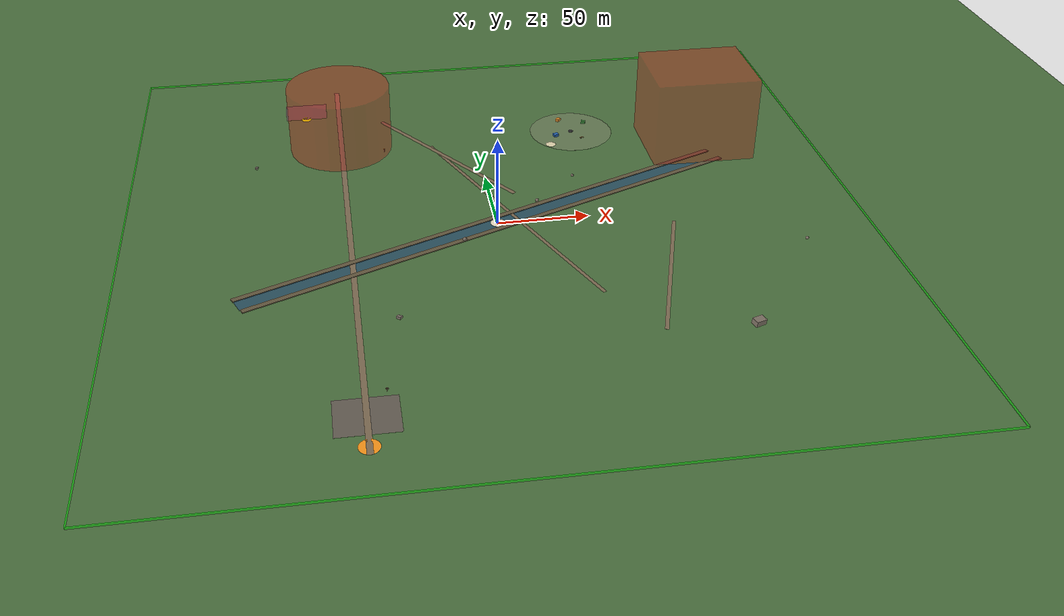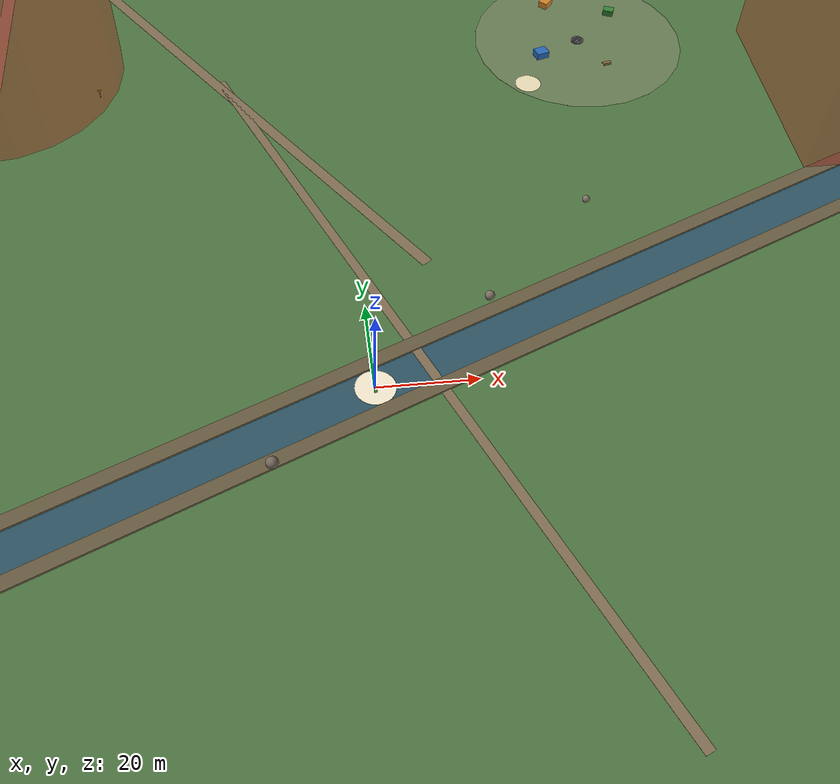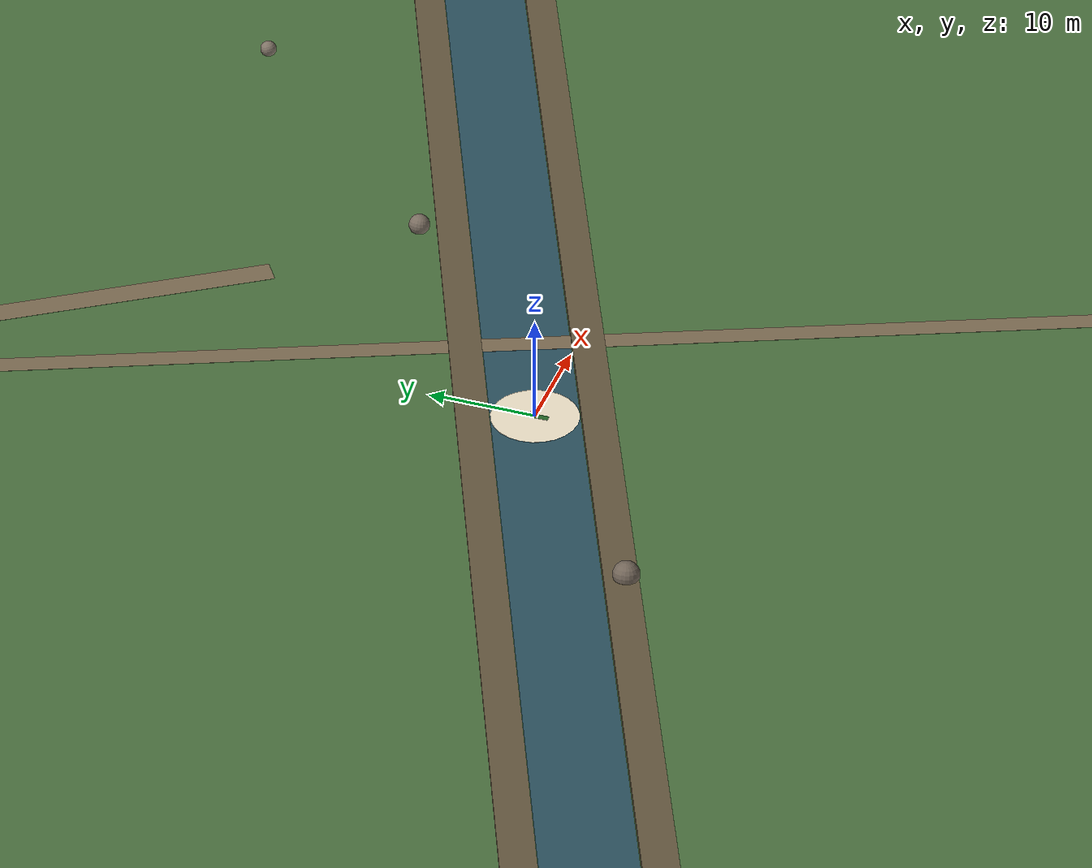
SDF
<sdf version="1.9">
 <world name="flyby_forest_isr">
  <physics name="training_physics" type="ode">
   <max_step_size>0.001</max_step_size>
   <real_time_factor>1.0</real_time_factor>
   <real_time_update_rate>1000</real_time_update_rate>
   <ode>
    <solver><type>quick</type><iters>50</iters><sor>1.3</sor></solver>
    <constraints><cfm>0.0</cfm><erp>0.2</erp></constraints>
   </ode>
  </physics>
  <plugin filename="gz-sim-physics-system" name="gz::sim::systems::Physics"/>
  <plugin filename="gz-sim-sensors-system" name="gz::sim::systems::Sensors">
   <render_engine>ogre2</render_engine>
  </plugin>
  <plugin filename="gz-sim-scene-broadcaster-system" name="gz::sim::systems::SceneBroadcaster"/>
  <plugin filename="gz-sim-user-commands-system" name="gz::sim::systems::UserCommands"/>
  <plugin filename="gz-sim-imu-system" name="gz::sim::systems::Imu"/>
  <plugin filename="gz-sim-air-pressure-system" name="gz::sim::systems::AirPressure"/>
  <plugin filename="gz-sim-magnetometer-system" name="gz::sim::systems::Magnetometer"/>
  <plugin filename="gz-sim-navsat-system" name="gz::sim::systems::NavSat"/>
  <atmosphere type="adiabatic"><temperature>293.15</temperature><pressure>101325</pressure></atmosphere>
  <spherical_coordinates>
   <surface_model>EARTH_WGS84</surface_model>
   <world_frame_orientation>ENU</world_frame_orientation>
   <latitude_deg>38.9072</latitude_deg>
   <longitude_deg>-121.0583</longitude_deg>
   <elevation>450</elevation>
   <heading_deg>0</heading_deg>
  </spherical_coordinates>
  <light type="directional" name="sun">
   <pose>0 0 150 0 0 0</pose>
   <diffuse>0.85 0.85 0.75 1</diffuse>
   <specular>0.3 0.3 0.25 1</specular>
   <attenuation>
    <range>1000</range>
    <constant>0.9</constant>
    <linear>0.01</linear>
    <quadratic>0.001</quadratic>
   </attenuation>
   <direction>-0.3 0.2 -0.9</direction>
  </light>
  <light type="directional" name="ambient_fill">
   <cast_shadows>false</cast_shadows>
   <pose>0 0 150 0 0 0</pose>
   <diffuse>0.2 0.22 0.18 1</diffuse>
   <specular>0 0 0 1</specular>
   <direction>0 0 -1</direction>
  </light>
  <scene>
   <ambient>0.35 0.38 0.32 1</ambient>
   <background>0.6 0.7 0.85 1</background>
   <shadows>true</shadows>
  </scene>
  <model name="ground_plane">
   <static>true</static>
   <link name="link">
    <collision name="collision">
     <geometry><plane><normal>0 0 1</normal><size>500 500</size></plane></geometry>
     <surface><friction><ode><mu>80</mu><mu2>40</mu2></ode></friction></surface>
    </collision>
    <visual name="visual">
     <geometry><plane><normal>0 0 1</normal><size>500 500</size></plane></geometry>
     <material><ambient>0.25 0.4 0.2 1</ambient><diffuse>0.3 0.45 0.25 1</diffuse></material>
    </visual>
   </link>
  </model>
  <model name="creek_water">
   <static>true</static>
   <pose>0 0 -0.15 0 0 0.4</pose>
   <link name="link">
    <visual name="visual">
     <geometry><box><size>300 8 0.3</size></box></geometry>
     <material>
      <ambient>0.15 0.3 0.4 0.85</ambient>
      <diffuse>0.2 0.35 0.45 0.85</diffuse>
      <specular>0.4 0.4 0.4 1</specular>
     </material>
    </visual>
   </link>
  </model>
  <model name="creek_bank_north">
   <static>true</static>
   <pose>-2.5 5 0.1 0 0 0.4</pose>
   <link name="link">
    <collision name="collision"><geometry><box><size>300 3 0.5</size></box></geometry></collision>
    <visual name="visual">
     <geometry><box><size>300 3 0.5</size></box></geometry>
     <material><ambient>0.35 0.3 0.2 1</ambient><diffuse>0.4 0.35 0.25 1</diffuse></material>
    </visual>
   </link>
  </model>
  <model name="creek_bank_south">
   <static>true</static>
   <pose>2.5 -5 0.1 0 0 0.4</pose>
   <link name="link">
    <collision name="collision"><geometry><box><size>300 3 0.5</size></box></geometry></collision>
    <visual name="visual">
     <geometry><box><size>300 3 0.5</size></box></geometry>
     <material><ambient>0.35 0.3 0.2 1</ambient><diffuse>0.4 0.35 0.25 1</diffuse></material>
    </visual>
   </link>
  </model>
  <model name="trail_main_ns">
   <static>true</static>
   <pose>-80 0 0.01 0 0 0</pose>
   <link name="link">
    <visual name="visual">
     <geometry><box><size>3 350 0.02</size></box></geometry>
     <material><ambient>0.45 0.38 0.28 1</ambient><diffuse>0.5 0.43 0.33 1</diffuse></material>
    </visual>
   </link>
  </model>
  <model name="trail_to_campsite">
   <static>true</static>
   <pose>-20 80 0.01 0 0 0.6</pose>
   <link name="link">
    <visual name="visual">
     <geometry><box><size>2.5 120 0.02</size></box></geometry>
     <material><ambient>0.45 0.38 0.28 1</ambient><diffuse>0.5 0.43 0.33 1</diffuse></material>
    </visual>
   </link>
  </model>
  <model name="trail_creek">
   <static>true</static>
   <pose>8 10 0.01 0 0 0.4</pose>
   <link name="link">
    <visual name="visual">
     <geometry><box><size>2 180 0.02</size></box></geometry>
     <material><ambient>0.45 0.38 0.28 1</ambient><diffuse>0.5 0.43 0.33 1</diffuse></material>
    </visual>
   </link>
  </model>
  <model name="trail_overlook">
   <static>true</static>
   <pose>80 -60 0.01 0 0 -0.3</pose>
   <link name="link">
    <visual name="visual">
     <geometry><box><size>2 100 0.02</size></box></geometry>
     <material><ambient>0.45 0.38 0.28 1</ambient><diffuse>0.5 0.43 0.33 1</diffuse></material>
    </visual>
   </link>
  </model>
  <model name="geofence_north">
   <static>true</static>
   <pose>0 200 0.5 0 0 0</pose>
   <link name="link">
    <visual name="visual">
     <geometry><box><size>400 0.5 1</size></box></geometry>
     <material><ambient>0 1 0 0.5</ambient><diffuse>0 1 0 0.5</diffuse></material>
    </visual>
   </link>
  </model>
  <model name="geofence_south">
   <static>true</static>
   <pose>0 -200 0.5 0 0 0</pose>
   <link name="link">
    <visual name="visual">
     <geometry><box><size>400 0.5 1</size></box></geometry>
     <material><ambient>0 1 0 0.5</ambient><diffuse>0 1 0 0.5</diffuse></material>
    </visual>
   </link>
  </model>
  <model name="geofence_east">
   <static>true</static>
   <pose>200 0 0.5 0 0 0</pose>
   <link name="link">
    <visual name="visual">
     <geometry><box><size>0.5 400 1</size></box></geometry>
     <material><ambient>0 1 0 0.5</ambient><diffuse>0 1 0 0.5</diffuse></material>
    </visual>
   </link>
  </model>
  <model name="geofence_west">
   <static>true</static>
   <pose>-200 0 0.5 0 0 0</pose>
   <link name="link">
    <visual name="visual">
     <geometry><box><size>0.5 400 1</size></box></geometry>
     <material><ambient>0 1 0 0.5</ambient><diffuse>0 1 0 0.5</diffuse></material>
    </visual>
   </link>
  </model>
  <model name="ranger_station_collision">
   <static>true</static>
   <pose>-120 150 4 0 0 0.1</pose>
   <link name="link">
    <collision name="collision"><geometry><box><size>15 12 8</size></box></geometry></collision>
   </link>
  </model>
  <model name="ranger_parking">
   <static>true</static>
   <pose>-100 150 0.01 0 0 0</pose>
   <link name="link">
    <visual name="visual">
     <geometry><box><size>25 20 0.02</size></box></geometry>
     <material><ambient>0.35 0.32 0.28 1</ambient><diffuse>0.4 0.37 0.33 1</diffuse></material>
    </visual>
   </link>
  </model>
  <model name="trailhead_parking">
   <static>true</static>
   <pose>-80 -150 0.01 0 0 0</pose>
   <link name="link">
    <visual name="visual">
     <geometry><box><size>30 25 0.02</size></box></geometry>
     <material><ambient>0.35 0.32 0.28 1</ambient><diffuse>0.4 0.37 0.33 1</diffuse></material>
    </visual>
   </link>
  </model>
  <model name="trailhead_sign">
   <static>true</static>
   <pose>-70 -135 0 0 0 0</pose>
   <link name="link">
    <visual name="post">
     <pose>0 0 1 0 0 0</pose>
     <geometry><cylinder><radius>0.08</radius><length>2</length></cylinder></geometry>
     <material><ambient>0.4 0.3 0.2 1</ambient><diffuse>0.5 0.4 0.3 1</diffuse></material>
    </visual>
    <visual name="board">
     <pose>0 0 2 0 0 0</pose>
     <geometry><box><size>1.2 0.1 0.8</size></box></geometry>
     <material><ambient>0.3 0.25 0.15 1</ambient><diffuse>0.4 0.35 0.25 1</diffuse></material>
    </visual>
   </link>
  </model>
  <model name="campsite_clearing">
   <static>true</static>
   <pose>60 100 0.005 0 0 0</pose>
   <link name="link">
    <visual name="visual">
     <geometry><cylinder><radius>25</radius><length>0.01</length></cylinder></geometry>
     <material><ambient>0.35 0.42 0.28 1</ambient><diffuse>0.4 0.48 0.33 1</diffuse></material>
    </visual>
   </link>
  </model>
  <model name="fire_pit">
   <static>true</static>
   <pose>60 100 0.1 0 0 0</pose>
   <link name="link">
    <visual name="ring">
     <geometry><cylinder><radius>1.5</radius><length>0.3</length></cylinder></geometry>
     <material><ambient>0.3 0.3 0.3 1</ambient><diffuse>0.35 0.35 0.35 1</diffuse></material>
    </visual>
    <visual name="ash">
     <pose>0 0 0.1 0 0 0</pose>
     <geometry><cylinder><radius>1.2</radius><length>0.1</length></cylinder></geometry>
     <material><ambient>0.2 0.2 0.2 1</ambient><diffuse>0.25 0.25 0.25 1</diffuse></material>
    </visual>
   </link>
  </model>
  <model name="tent_1">
   <static>true</static>
   <pose>50 95 0 0 0 0.3</pose>
   <link name="link">
    <collision name="collision">
     <pose>0 0 0.8 0 0 0</pose>
     <geometry><box><size>3 2.5 1.6</size></box></geometry>
    </collision>
    <visual name="body">
     <pose>0 0 0.8 0 0 0</pose>
     <geometry><box><size>3 2.5 1.6</size></box></geometry>
     <material><ambient>0.1 0.3 0.6 1</ambient><diffuse>0.15 0.4 0.7 1</diffuse></material>
    </visual>
   </link>
  </model>
  <model name="tent_2">
   <static>true</static>
   <pose>70 110 0 0 0 -0.4</pose>
   <link name="link">
    <collision name="collision">
     <pose>0 0 0.7 0 0 0</pose>
     <geometry><box><size>2.5 2 1.4</size></box></geometry>
    </collision>
    <visual name="body">
     <pose>0 0 0.7 0 0 0</pose>
     <geometry><box><size>2.5 2 1.4</size></box></geometry>
     <material><ambient>0.15 0.4 0.15 1</ambient><diffuse>0.2 0.5 0.2 1</diffuse></material>
    </visual>
   </link>
  </model>
  <model name="tent_3">
   <static>true</static>
   <pose>55 115 0 0 0 0.8</pose>
   <link name="link">
    <collision name="collision">
     <pose>0 0 0.75 0 0 0</pose>
     <geometry><box><size>2.8 2.2 1.5</size></box></geometry>
    </collision>
    <visual name="body">
     <pose>0 0 0.75 0 0 0</pose>
     <geometry><box><size>2.8 2.2 1.5</size></box></geometry>
     <material><ambient>0.7 0.4 0.1 1</ambient><diffuse>0.8 0.5 0.15 1</diffuse></material>
    </visual>
   </link>
  </model>
  <model name="picnic_table">
   <static>true</static>
   <pose>65 90 0 0 0 0.2</pose>
   <link name="link">
    <collision name="collision">
     <pose>0 0 0.4 0 0 0</pose>
     <geometry><box><size>2 1.5 0.8</size></box></geometry>
    </collision>
    <visual name="table_top">
     <pose>0 0 0.75 0 0 0</pose>
     <geometry><box><size>2 0.8 0.1</size></box></geometry>
     <material><ambient>0.4 0.3 0.15 1</ambient><diffuse>0.5 0.4 0.2 1</diffuse></material>
    </visual>
    <visual name="bench_1">
     <pose>0 0.5 0.45 0 0 0</pose>
     <geometry><box><size>2 0.3 0.1</size></box></geometry>
     <material><ambient>0.4 0.3 0.15 1</ambient><diffuse>0.5 0.4 0.2 1</diffuse></material>
    </visual>
    <visual name="bench_2">
     <pose>0 -0.5 0.45 0 0 0</pose>
     <geometry><box><size>2 0.3 0.1</size></box></geometry>
     <material><ambient>0.4 0.3 0.15 1</ambient><diffuse>0.5 0.4 0.2 1</diffuse></material>
    </visual>
   </link>
  </model>
  <model name="grove1_pine_1_collision">
   <static>true</static>
   <pose>-150 170 0 0 0 0</pose>
   <link name="link">
    <collision name="trunk">
     <pose>0 0 7 0 0 0</pose>
     <geometry><cylinder><radius>0.35</radius><length>14</length></cylinder></geometry>
    </collision>
    <collision name="canopy">
     <pose>0 0 12 0 0 0</pose>
     <geometry><cylinder><radius>2.5</radius><length>10</length></cylinder></geometry>
    </collision>
   </link>
  </model>
  <model name="grove1_pine_2_collision">
   <static>true</static>
   <pose>-145 180 0 0 0 0</pose>
   <link name="link">
    <collision name="trunk">
     <pose>0 0 8 0 0 0</pose>
     <geometry><cylinder><radius>0.4</radius><length>16</length></cylinder></geometry>
    </collision>
    <collision name="canopy">
     <pose>0 0 14 0 0 0</pose>
     <geometry><cylinder><radius>3</radius><length>12</length></cylinder></geometry>
    </collision>
   </link>
  </model>
  <model name="grove2_oak_1_collision">
   <static>true</static>
   <pose>-100 50 0 0 0 0</pose>
   <link name="link">
    <collision name="trunk">
     <pose>0 0 5 0 0 0</pose>
     <geometry><cylinder><radius>0.5</radius><length>10</length></cylinder></geometry>
    </collision>
    <collision name="canopy">
     <pose>0 0 12 0 0 0</pose>
     <geometry><sphere><radius>4</radius></sphere></geometry>
    </collision>
   </link>
  </model>
  <model name="rock_overlook_1">
   <static>true</static>
   <pose>110 -110 1.5 0.1 0.05 0.4</pose>
   <link name="link">
    <visual name="visual">
     <geometry><box><size>6 4 3</size></box></geometry>
     <material><ambient>0.4 0.35 0.3 1</ambient><diffuse>0.5 0.45 0.4 1</diffuse></material>
    </visual>
    <collision name="collision"><geometry><box><size>6 4 3</size></box></geometry></collision>
   </link>
  </model>
  <model name="creek_rock_1">
   <static>true</static>
   <pose>-20 -15 0.6 0.15 0.1 1.2</pose>
   <link name="link">
    <visual name="visual">
     <geometry><sphere><radius>1.2</radius></sphere></geometry>
     <material><ambient>0.35 0.3 0.25 1</ambient><diffuse>0.45 0.4 0.35 1</diffuse></material>
    </visual>
    <collision name="collision"><geometry><sphere><radius>1.2</radius></sphere></geometry></collision>
   </link>
  </model>
  <model name="creek_rock_2">
   <static>true</static>
   <pose>25 20 0.5 0.2 0.15 0.7</pose>
   <link name="link">
    <visual name="visual">
     <geometry><sphere><radius>1.0</radius></sphere></geometry>
     <material><ambient>0.38 0.33 0.28 1</ambient><diffuse>0.48 0.43 0.38 1</diffuse></material>
    </visual>
    <collision name="collision"><geometry><sphere><radius>1.0</radius></sphere></geometry></collision>
   </link>
  </model>
  <model name="creek_rock_3">
   <static>true</static>
   <pose>50 45 0.4 0.1 0.2 2.1</pose>
   <link name="link">
    <visual name="visual">
     <geometry><sphere><radius>0.8</radius></sphere></geometry>
     <material><ambient>0.4 0.35 0.3 1</ambient><diffuse>0.5 0.45 0.4 1</diffuse></material>
    </visual>
    <collision name="collision"><geometry><sphere><radius>0.8</radius></sphere></geometry></collision>
   </link>
  </model>
  <model name="scattered_rock_1">
   <static>true</static>
   <pose>-130 80 0.5 0.12 0.08 1.5</pose>
   <link name="link">
    <visual name="visual">
     <geometry><box><size>2 1.5 1</size></box></geometry>
     <material><ambient>0.36 0.32 0.28 1</ambient><diffuse>0.46 0.42 0.38 1</diffuse></material>
    </visual>
    <collision name="collision"><geometry><box><size>2 1.5 1</size></box></geometry></collision>
   </link>
  </model>
  <model name="scattered_rock_2">
   <static>true</static>
   <pose>160 -40 0.45 0.08 0.15 0.9</pose>
   <link name="link">
    <visual name="visual">
     <geometry><sphere><radius>0.9</radius></sphere></geometry>
     <material><ambient>0.42 0.37 0.32 1</ambient><diffuse>0.52 0.47 0.42 1</diffuse></material>
    </visual>
    <collision name="collision"><geometry><sphere><radius>0.9</radius></sphere></geometry></collision>
   </link>
  </model>
  <model name="scattered_rock_3">
   <static>true</static>
   <pose>-60 -80 0.6 0.05 0.1 2.4</pose>
   <link name="link">
    <visual name="visual">
     <geometry><box><size>2.5 2 1.2</size></box></geometry>
     <material><ambient>0.38 0.34 0.3 1</ambient><diffuse>0.48 0.44 0.4 1</diffuse></material>
    </visual>
    <collision name="collision"><geometry><box><size>2.5 2 1.2</size></box></geometry></collision>
   </link>
  </model>
  <model name="vehicle_ranger_truck_collision">
   <static>true</static>
   <pose>-95 155 0.9 0 0 0.1</pose>
   <link name="link">
    <collision name="collision"><geometry><box><size>5.5 2 1.8</size></box></geometry></collision>
   </link>
  </model>
  <model name="vehicle_ranger_suv_collision">
   <static>true</static>
   <pose>-105 155 0.9 0 0 0.05</pose>
   <link name="link">
    <collision name="collision"><geometry><box><size>4.5 2 1.8</size></box></geometry></collision>
   </link>
  </model>
  <model name="vehicle_hiker_1_collision">
   <static>true</static>
   <pose>-75 -155 0.75 0 0 0</pose>
   <link name="link">
    <collision name="collision"><geometry><box><size>4 1.8 1.5</size></box></geometry></collision>
   </link>
  </model>
  <model name="vehicle_hiker_2_collision">
   <static>true</static>
   <pose>-85 -155 0.75 0 0 0.02</pose>
   <link name="link">
    <collision name="collision"><geometry><box><size>4 1.8 1.5</size></box></geometry></collision>
   </link>
  </model>
  <model name="vehicle_hiker_3_collision">
   <static>true</static>
   <pose>-90 -145 0.9 0 0 1.57</pose>
   <link name="link">
    <collision name="collision"><geometry><box><size>5.5 2 1.8</size></box></geometry></collision>
   </link>
  </model>
  <model name="nfz_wildlife_nesting">
   <static>true</static>
   <pose>-80 100 20 0 0 0</pose>
   <link name="link">
    <visual name="visual">
     <geometry><cylinder><radius>30</radius><length>40</length></cylinder></geometry>
     <material><ambient>1 0 0 0.3</ambient><diffuse>1 0 0 0.3</diffuse></material>
    </visual>
   </link>
  </model>
  <model name="wildlife_sign">
   <static>true</static>
   <pose>-55 90 0 0 0 0</pose>
   <link name="link">
    <visual name="post">
     <pose>0 0 1 0 0 0</pose>
     <geometry><cylinder><radius>0.06</radius><length>2</length></cylinder></geometry>
     <material><ambient>0.4 0.3 0.2 1</ambient><diffuse>0.5 0.4 0.3 1</diffuse></material>
    </visual>
    <visual name="sign">
     <pose>0 0 2.1 0 0 0</pose>
     <geometry><box><size>0.8 0.1 0.5</size></box></geometry>
     <material><ambient>0.8 0.6 0.1 1</ambient><diffuse>0.9 0.7 0.2 1</diffuse></material>
    </visual>
   </link>
  </model>
  <model name="nfz_private_property">
   <static>true</static>
   <pose>130 75 25 0 0 0</pose>
   <link name="link">
    <visual name="visual">
     <geometry><box><size>60 50 50</size></box></geometry>
     <material><ambient>1 0 0 0.3</ambient><diffuse>1 0 0 0.3</diffuse></material>
    </visual>
   </link>
  </model>
  <model name="private_cabin_collision">
   <static>true</static>
   <pose>130 75 3.5 0 0 0</pose>
   <link name="link">
    <collision name="collision"><geometry><box><size>12 10 7</size></box></geometry></collision>
   </link>
  </model>
  <model name="landing_zone_primary">
   <static>true</static>
   <pose>0 0 0.01 0 0 0</pose>
   <link name="link">
    <visual name="visual">
     <geometry><cylinder><radius>4</radius><length>0.02</length></cylinder></geometry>
     <material><ambient>0.9 0.85 0.7 1</ambient><diffuse>0.95 0.9 0.8 1</diffuse></material>
    </visual>
    <visual name="H_mark">
     <pose>0 0 0.01 0 0 0</pose>
     <geometry><box><size>0.6 2.5 0.01</size></box></geometry>
     <material><ambient>0.1 0.3 0.1 1</ambient><diffuse>0.15 0.4 0.15 1</diffuse></material>
    </visual>
   </link>
  </model>
  <model name="landing_zone_ranger">
   <static>true</static>
   <pose>-100 140 0.01 0 0 0</pose>
   <link name="link">
    <visual name="visual">
     <geometry><cylinder><radius>3</radius><length>0.02</length></cylinder></geometry>
     <material><ambient>1 1 0 1</ambient><diffuse>1 1 0 1</diffuse></material>
    </visual>
   </link>
  </model>
  <model name="landing_zone_campsite">
   <static>true</static>
   <pose>45 85 0.01 0 0 0</pose>
   <link name="link">
    <visual name="visual">
     <geometry><cylinder><radius>3</radius><length>0.02</length></cylinder></geometry>
     <material><ambient>0.85 0.8 0.6 1</ambient><diffuse>0.9 0.85 0.7 1</diffuse></material>
    </visual>
   </link>
  </model>
  <model name="landing_zone_emergency">
   <static>true</static>
   <pose>-80 -170 0.01 0 0 0</pose>
   <link name="link">
    <visual name="visual">
     <geometry><cylinder><radius>5</radius><length>0.02</length></cylinder></geometry>
     <material><ambient>1 0.5 0 1</ambient><diffuse>1 0.6 0.1 1</diffuse></material>
    </visual>
   </link>
  </model>
  <include>
   <uri>model://f11_isr_camera</uri>
   <name>f11_isr</name>
   <pose>0 0 0.5 0 0 0</pose>
   <plugin filename="gz-sim-joint-position-controller-system" name="gz::sim::systems::JointPositionController">
    <joint_name>gimbal_yaw_joint</joint_name>
    <topic>/f11_isr/gimbal/yaw</topic>
    <p_gain>10.0</p_gain>
    <i_gain>0.1</i_gain>
    <d_gain>0.5</d_gain>
    <i_max>1.0</i_max>
    <i_min>-1.0</i_min>
    <cmd_max>10.0</cmd_max>
    <cmd_min>-10.0</cmd_min>
   </plugin>
   <plugin filename="gz-sim-joint-position-controller-system" name="gz::sim::systems::JointPositionController">
    <joint_name>gimbal_pitch_joint</joint_name>
    <topic>/f11_isr/gimbal/pitch</topic>
    <p_gain>10.0</p_gain>
    <i_gain>0.1</i_gain>
    <d_gain>0.5</d_gain>
    <i_max>1.0</i_max>
    <i_min>-1.0</i_min>
    <cmd_max>10.0</cmd_max>
    <cmd_min>-10.0</cmd_min>
   </plugin>
   <plugin filename="gz-sim-joint-position-controller-system" name="gz::sim::systems::JointPositionController">
    <joint_name>camera_joint</joint_name>
    <topic>/f11_isr/gimbal/roll</topic>
    <p_gain>10.0</p_gain>
    <i_gain>0.1</i_gain>
    <d_gain>0.5</d_gain>
    <i_max>1.0</i_max>
    <i_min>-1.0</i_min>
    <cmd_max>10.0</cmd_max>
    <cmd_min>-10.0</cmd_min>
   </plugin>
  </include>
 </world>
</sdf>

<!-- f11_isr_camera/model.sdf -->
<sdf version="1.9">
  <model name="f11_isr_camera">
    <pose>0 0 0.25 0 0 0</pose>

    <!-- F-11 Base Link (Main Body) -->
    <link name="base_link">
      <inertial>
        <!-- Total mass: 4.5 kg base + 1.8 kg payload = 6.3 kg -->
        <mass>6.3</mass>
        <!-- CoG shifted down due to bottom-mounted payload -->
        <pose>0 0 -0.05 0 0 0</pose>
        <inertia>
          <!-- Adjusted inertia for heavier payload -->
          <ixx>0.115</ixx>
          <ixy>0</ixy>
          <ixz>0</ixz>
          <iyy>0.115</iyy>
          <iyz>0</iyz>
          <izz>0.175</izz>
        </inertia>
      </inertial>

      <!-- Main body visual - central frame -->
      <visual name="body_visual">
        <geometry>
          <box>
            <size>0.30 0.30 0.12</size>
          </box>
        </geometry>
        <material>
          <ambient>0.1 0.1 0.1 1</ambient>
          <diffuse>0.15 0.15 0.15 1</diffuse>
          <specular>0.3 0.3 0.3 1</specular>
        </material>
      </visual>

      <!-- Battery bay visual -->
      <visual name="battery_visual">
        <pose>0 0 -0.04 0 0 0</pose>
        <geometry>
          <box>
            <size>0.18 0.12 0.06</size>
          </box>
        </geometry>
        <material>
          <ambient>0.2 0.2 0.25 1</ambient>
          <diffuse>0.25 0.25 0.3 1</diffuse>
        </material>
      </visual>

      <!-- Jetson Orin NX housing visual -->
      <visual name="compute_visual">
        <pose>0 0 0.08 0 0 0</pose>
        <geometry>
          <box>
            <size>0.10 0.08 0.04</size>
          </box>
        </geometry>
        <material>
          <ambient>0.0 0.4 0.0 1</ambient>
          <diffuse>0.0 0.5 0.0 1</diffuse>
        </material>
      </visual>

      <!-- Front marker for orientation (green) -->
      <visual name="front_marker">
        <pose>0.12 0 0.06 0 0 0</pose>
        <geometry>
          <sphere>
            <radius>0.03</radius>
          </sphere>
        </geometry>
        <material>
          <ambient>0 1 0 1</ambient>
          <diffuse>0 1 0 1</diffuse>
        </material>
      </visual>

      <!-- Arms visual representation -->
      <visual name="arm_fr_visual">
        <pose>0.1375 -0.1375 0 0 0 -0.785398</pose>
        <geometry>
          <box>
            <size>0.25 0.04 0.03</size>
          </box>
        </geometry>
        <material>
          <ambient>0.15 0.15 0.15 1</ambient>
          <diffuse>0.2 0.2 0.2 1</diffuse>
        </material>
      </visual>

      <visual name="arm_fl_visual">
        <pose>0.1375 0.1375 0 0 0 0.785398</pose>
        <geometry>
          <box>
            <size>0.25 0.04 0.03</size>
          </box>
        </geometry>
        <material>
          <ambient>0.15 0.15 0.15 1</ambient>
          <diffuse>0.2 0.2 0.2 1</diffuse>
        </material>
      </visual>

      <visual name="arm_br_visual">
        <pose>-0.1375 -0.1375 0 0 0 0.785398</pose>
        <geometry>
          <box>
            <size>0.25 0.04 0.03</size>
          </box>
        </geometry>
        <material>
          <ambient>0.15 0.15 0.15 1</ambient>
          <diffuse>0.2 0.2 0.2 1</diffuse>
        </material>
      </visual>

      <visual name="arm_bl_visual">
        <pose>-0.1375 0.1375 0 0 0 -0.785398</pose>
        <geometry>
          <box>
            <size>0.25 0.04 0.03</size>
          </box>
        </geometry>
        <material>
          <ambient>0.15 0.15 0.15 1</ambient>
          <diffuse>0.2 0.2 0.2 1</diffuse>
        </material>
      </visual>

      <collision name="body_collision">
        <geometry>
          <box>
            <size>0.55 0.55 0.15</size>
          </box>
        </geometry>
      </collision>
    </link>

    <!-- Rotor 0 (Front Right - CW) -->
    <link name="rotor_0">
      <pose>0.195 -0.195 0.04 0 0 0</pose>
      <inertial>
        <mass>0.025</mass>
        <inertia>
          <ixx>1.0e-05</ixx>
          <ixy>0</ixy>
          <ixz>0</ixz>
          <iyy>5.0e-04</iyy>
          <iyz>0</iyz>
          <izz>5.0e-04</izz>
        </inertia>
      </inertial>
      <visual name="rotor_visual">
        <geometry>
          <cylinder>
            <radius>0.19</radius>
            <length>0.01</length>
          </cylinder>
        </geometry>
        <material>
          <ambient>0.8 0.2 0.2 0.8</ambient>
          <diffuse>0.9 0.3 0.3 0.8</diffuse>
        </material>
      </visual>
      <visual name="motor_visual">
        <pose>0 0 -0.015 0 0 0</pose>
        <geometry>
          <cylinder>
            <radius>0.025</radius>
            <length>0.04</length>
          </cylinder>
        </geometry>
        <material>
          <ambient>0.3 0.3 0.3 1</ambient>
          <diffuse>0.4 0.4 0.4 1</diffuse>
        </material>
      </visual>
    </link>

    <!-- Rotor 1 (Back Left - CW) -->
    <link name="rotor_1">
      <pose>-0.195 0.195 0.04 0 0 0</pose>
      <inertial>
        <mass>0.025</mass>
        <inertia>
          <ixx>1.0e-05</ixx>
          <ixy>0</ixy>
          <ixz>0</ixz>
          <iyy>5.0e-04</iyy>
          <iyz>0</iyz>
          <izz>5.0e-04</izz>
        </inertia>
      </inertial>
      <visual name="rotor_visual">
        <geometry>
          <cylinder>
            <radius>0.19</radius>
            <length>0.01</length>
          </cylinder>
        </geometry>
        <material>
          <ambient>0.8 0.2 0.2 0.8</ambient>
          <diffuse>0.9 0.3 0.3 0.8</diffuse>
        </material>
      </visual>
      <visual name="motor_visual">
        <pose>0 0 -0.015 0 0 0</pose>
        <geometry>
          <cylinder>
            <radius>0.025</radius>
            <length>0.04</length>
          </cylinder>
        </geometry>
        <material>
          <ambient>0.3 0.3 0.3 1</ambient>
          <diffuse>0.4 0.4 0.4 1</diffuse>
        </material>
      </visual>
    </link>

    <!-- Rotor 2 (Front Left - CCW) -->
    <link name="rotor_2">
      <pose>0.195 0.195 0.04 0 0 0</pose>
      <inertial>
        <mass>0.025</mass>
        <inertia>
          <ixx>1.0e-05</ixx>
          <ixy>0</ixy>
          <ixz>0</ixz>
          <iyy>5.0e-04</iyy>
          <iyz>0</iyz>
          <izz>5.0e-04</izz>
        </inertia>
      </inertial>
      <visual name="rotor_visual">
        <geometry>
          <cylinder>
            <radius>0.19</radius>
            <length>0.01</length>
          </cylinder>
        </geometry>
        <material>
          <ambient>0.2 0.2 0.8 0.8</ambient>
          <diffuse>0.3 0.3 0.9 0.8</diffuse>
        </material>
      </visual>
      <visual name="motor_visual">
        <pose>0 0 -0.015 0 0 0</pose>
        <geometry>
          <cylinder>
            <radius>0.025</radius>
            <length>0.04</length>
          </cylinder>
        </geometry>
        <material>
          <ambient>0.3 0.3 0.3 1</ambient>
          <diffuse>0.4 0.4 0.4 1</diffuse>
        </material>
      </visual>
    </link>

    <!-- Rotor 3 (Back Right - CCW) -->
    <link name="rotor_3">
      <pose>-0.195 -0.195 0.04 0 0 0</pose>
      <inertial>
        <mass>0.025</mass>
        <inertia>
          <ixx>1.0e-05</ixx>
          <ixy>0</ixy>
          <ixz>0</ixz>
          <iyy>5.0e-04</iyy>
          <iyz>0</iyz>
          <izz>5.0e-04</izz>
        </inertia>
      </inertial>
      <visual name="rotor_visual">
        <geometry>
          <cylinder>
            <radius>0.19</radius>
            <length>0.01</length>
          </cylinder>
        </geometry>
        <material>
          <ambient>0.2 0.2 0.8 0.8</ambient>
          <diffuse>0.3 0.3 0.9 0.8</diffuse>
        </material>
      </visual>
      <visual name="motor_visual">
        <pose>0 0 -0.015 0 0 0</pose>
        <geometry>
          <cylinder>
            <radius>0.025</radius>
            <length>0.04</length>
          </cylinder>
        </geometry>
        <material>
          <ambient>0.3 0.3 0.3 1</ambient>
          <diffuse>0.4 0.4 0.4 1</diffuse>
        </material>
      </visual>
    </link>

    <!-- Gimbal Mount Link -->
    <link name="gimbal_mount_link">
      <pose>0 0 -0.10 0 0 0</pose>
      <inertial>
        <mass>0.2</mass>
        <inertia>
          <ixx>0.0005</ixx>
          <ixy>0</ixy>
          <ixz>0</ixz>
          <iyy>0.0005</iyy>
          <iyz>0</iyz>
          <izz>0.0003</izz>
        </inertia>
      </inertial>
      <visual name="mount_visual">
        <geometry>
          <box>
            <size>0.08 0.08 0.03</size>
          </box>
        </geometry>
        <material>
          <ambient>0.3 0.3 0.3 1</ambient>
          <diffuse>0.4 0.4 0.4 1</diffuse>
        </material>
      </visual>
    </link>

    <!-- Gimbal Yaw Link -->
    <link name="gimbal_yaw_link">
      <pose>0 0 -0.13 0 0 0</pose>
      <inertial>
        <mass>0.3</mass>
        <inertia>
          <ixx>0.0008</ixx>
          <ixy>0</ixy>
          <ixz>0</ixz>
          <iyy>0.0008</iyy>
          <iyz>0</iyz>
          <izz>0.0005</izz>
        </inertia>
      </inertial>
      <visual name="yaw_visual">
        <geometry>
          <cylinder>
            <radius>0.04</radius>
            <length>0.05</length>
          </cylinder>
        </geometry>
        <material>
          <ambient>0.25 0.25 0.25 1</ambient>
          <diffuse>0.35 0.35 0.35 1</diffuse>
        </material>
      </visual>
    </link>

    <!-- Gimbal Pitch Link -->
    <link name="gimbal_pitch_link">
      <pose>0 0 -0.18 0 0 0</pose>
      <inertial>
        <mass>0.25</mass>
        <inertia>
          <ixx>0.0006</ixx>
          <ixy>0</ixy>
          <ixz>0</ixz>
          <iyy>0.0006</iyy>
          <iyz>0</iyz>
          <izz>0.0004</izz>
        </inertia>
      </inertial>
      <visual name="pitch_visual">
        <geometry>
          <box>
            <size>0.06 0.12 0.06</size>
          </box>
        </geometry>
        <material>
          <ambient>0.2 0.2 0.2 1</ambient>
          <diffuse>0.3 0.3 0.3 1</diffuse>
        </material>
      </visual>
    </link>

    <!-- Camera Link (Sony A7R) -->
    <link name="camera_link">
      <pose>0 0 -0.25 0 0.35 0</pose>
      <inertial>
        <mass>0.85</mass>
        <inertia>
          <ixx>0.002</ixx>
          <ixy>0</ixy>
          <ixz>0</ixz>
          <iyy>0.0015</iyy>
          <iyz>0</iyz>
          <izz>0.001</izz>
        </inertia>
      </inertial>
      <!-- Camera body -->
      <visual name="camera_body_visual">
        <geometry>
          <box>
            <size>0.127 0.094 0.048</size>
          </box>
        </geometry>
        <material>
          <ambient>0.1 0.1 0.1 1</ambient>
          <diffuse>0.15 0.15 0.15 1</diffuse>
        </material>
      </visual>
      <!-- Lens -->
      <visual name="lens_visual">
        <pose>0.06 0 0 0 1.5708 0</pose>
        <geometry>
          <cylinder>
            <radius>0.035</radius>
            <length>0.08</length>
          </cylinder>
        </geometry>
        <material>
          <ambient>0.05 0.05 0.05 1</ambient>
          <diffuse>0.1 0.1 0.1 1</diffuse>
        </material>
      </visual>
      <!-- Camera Sensor -->
      <sensor name="isr_camera" type="camera">
        <pose>0.10 0 0 0 0 0</pose>
        <camera>
          <horizontal_fov>1.047</horizontal_fov>
          <image>
            <width>1920</width>
            <height>1080</height>
            <format>R8G8B8</format>
          </image>
          <clip>
            <near>0.1</near>
            <far>1000</far>
          </clip>
          <noise>
            <type>gaussian</type>
            <mean>0</mean>
            <stddev>0.007</stddev>
          </noise>
        </camera>
        <always_on>1</always_on>
        <update_rate>30</update_rate>
        <visualize>true</visualize>
      </sensor>
    </link>

    <!-- Rotor joints -->
    <joint name="rotor_0_joint" type="revolute">
      <parent>base_link</parent>
      <child>rotor_0</child>
      <axis>
        <xyz>0 0 1</xyz>
        <limit>
          <lower>-1e16</lower>
          <upper>1e16</upper>
        </limit>
        <dynamics>
          <damping>0.004</damping>
        </dynamics>
      </axis>
    </joint>

    <joint name="rotor_1_joint" type="revolute">
      <parent>base_link</parent>
      <child>rotor_1</child>
      <axis>
        <xyz>0 0 1</xyz>
        <limit>
          <lower>-1e16</lower>
          <upper>1e16</upper>
        </limit>
        <dynamics>
          <damping>0.004</damping>
        </dynamics>
      </axis>
    </joint>

    <joint name="rotor_2_joint" type="revolute">
      <parent>base_link</parent>
      <child>rotor_2</child>
      <axis>
        <xyz>0 0 1</xyz>
        <limit>
          <lower>-1e16</lower>
          <upper>1e16</upper>
        </limit>
        <dynamics>
          <damping>0.004</damping>
        </dynamics>
      </axis>
    </joint>

    <joint name="rotor_3_joint" type="revolute">
      <parent>base_link</parent>
      <child>rotor_3</child>
      <axis>
        <xyz>0 0 1</xyz>
        <limit>
          <lower>-1e16</lower>
          <upper>1e16</upper>
        </limit>
        <dynamics>
          <damping>0.004</damping>
        </dynamics>
      </axis>
    </joint>

    <!-- Gimbal joints -->
    <joint name="gimbal_mount_joint" type="fixed">
      <parent>base_link</parent>
      <child>gimbal_mount_link</child>
    </joint>

    <joint name="gimbal_yaw_joint" type="revolute">
      <parent>gimbal_mount_link</parent>
      <child>gimbal_yaw_link</child>
      <axis>
        <xyz>0 0 1</xyz>
        <limit>
          <lower>-6.02</lower>
          <upper>6.02</upper>
        </limit>
        <dynamics>
          <damping>0.5</damping>
        </dynamics>
      </axis>
    </joint>

    <joint name="gimbal_pitch_joint" type="revolute">
      <parent>gimbal_yaw_link</parent>
      <child>gimbal_pitch_link</child>
      <axis>
        <xyz>0 1 0</xyz>
        <limit>
          <lower>-2.09</lower>
          <upper>2.09</upper>
        </limit>
        <dynamics>
          <damping>0.5</damping>
        </dynamics>
      </axis>
    </joint>

    <joint name="camera_joint" type="revolute">
      <parent>gimbal_pitch_link</parent>
      <child>camera_link</child>
      <axis>
        <xyz>1 0 0</xyz>
        <limit>
          <lower>-0.785</lower>
          <upper>0.785</upper>
        </limit>
        <dynamics>
          <damping>0.5</damping>
        </dynamics>
      </axis>
    </joint>

    <!-- IMU Sensor Link -->
    <link name="imu_link">
      <pose>0 0 0 0 0 0</pose>
      <inertial>
        <mass>0.015</mass>
        <inertia>
          <ixx>1e-05</ixx>
          <ixy>0</ixy>
          <ixz>0</ixz>
          <iyy>1e-05</iyy>
          <iyz>0</iyz>
          <izz>1e-05</izz>
        </inertia>
      </inertial>
      <sensor name="imu_sensor" type="imu">
        <always_on>1</always_on>
        <update_rate>250</update_rate>
        <imu>
          <angular_velocity>
            <x><noise type="gaussian"><mean>0</mean><stddev>0.009</stddev></noise></x>
            <y><noise type="gaussian"><mean>0</mean><stddev>0.009</stddev></noise></y>
            <z><noise type="gaussian"><mean>0</mean><stddev>0.009</stddev></noise></z>
          </angular_velocity>
          <linear_acceleration>
            <x><noise type="gaussian"><mean>0</mean><stddev>0.017</stddev></noise></x>
            <y><noise type="gaussian"><mean>0</mean><stddev>0.017</stddev></noise></y>
            <z><noise type="gaussian"><mean>0</mean><stddev>0.017</stddev></noise></z>
          </linear_acceleration>
        </imu>
      </sensor>
    </link>

    <joint name="imu_joint" type="fixed">
      <parent>base_link</parent>
      <child>imu_link</child>
    </joint>

    <!-- GPS Link -->
    <link name="gps_link">
      <pose>0 0 0.10 0 0 0</pose>
      <inertial>
        <mass>0.05</mass>
        <inertia>
          <ixx>1e-05</ixx>
          <ixy>0</ixy>
          <ixz>0</ixz>
          <iyy>1e-05</iyy>
          <iyz>0</iyz>
          <izz>1e-05</izz>
        </inertia>
      </inertial>
      <visual name="gps_visual">
        <geometry>
          <cylinder>
            <radius>0.03</radius>
            <length>0.015</length>
          </cylinder>
        </geometry>
        <material>
          <ambient>0.8 0.8 0.8 1</ambient>
          <diffuse>0.9 0.9 0.9 1</diffuse>
        </material>
      </visual>
      <sensor name="gps_sensor" type="navsat">
        <always_on>1</always_on>
        <update_rate>10</update_rate>
      </sensor>
    </link>

    <joint name="gps_joint" type="fixed">
      <parent>base_link</parent>
      <child>gps_link</child>
    </joint>

    <!-- Gimbal Yaw Position Controller -->
    <plugin filename="gz-sim-joint-position-controller-system"
            name="gz::sim::systems::JointPositionController">
      <joint_name>gimbal_yaw_joint</joint_name>
      <topic>/f11_isr/gimbal/yaw</topic>
      <p_gain>10.0</p_gain>
      <i_gain>0.1</i_gain>
      <d_gain>0.5</d_gain>
      <i_max>1.0</i_max>
      <i_min>-1.0</i_min>
      <cmd_max>10.0</cmd_max>
      <cmd_min>-10.0</cmd_min>
    </plugin>

    <!-- Gimbal Pitch Position Controller -->
    <plugin filename="gz-sim-joint-position-controller-system"
            name="gz::sim::systems::JointPositionController">
      <joint_name>gimbal_pitch_joint</joint_name>
      <topic>/f11_isr/gimbal/pitch</topic>
      <p_gain>10.0</p_gain>
      <i_gain>0.1</i_gain>
      <d_gain>0.5</d_gain>
      <i_max>1.0</i_max>
      <i_min>-1.0</i_min>
      <cmd_max>10.0</cmd_max>
      <cmd_min>-10.0</cmd_min>
    </plugin>

    <!-- Gimbal Roll (Camera) Position Controller -->
    <plugin filename="gz-sim-joint-position-controller-system"
            name="gz::sim::systems::JointPositionController">
      <joint_name>camera_joint</joint_name>
      <topic>/f11_isr/gimbal/roll</topic>
      <p_gain>10.0</p_gain>
      <i_gain>0.1</i_gain>
      <d_gain>0.5</d_gain>
      <i_max>1.0</i_max>
      <i_min>-1.0</i_min>
      <cmd_max>10.0</cmd_max>
      <cmd_min>-10.0</cmd_min>
    </plugin>

    <!-- ArduPilot Plugin -->
    <plugin filename="ArduPilotPlugin" name="ArduPilotPlugin">
      <fdm_addr>127.0.0.1</fdm_addr>
      <fdm_port_in>9002</fdm_port_in>
      <fdm_port_out>9003</fdm_port_out>

      <modelXYZToAirplaneXForwardZDown>0 0 0 3.141593 0 0</modelXYZToAirplaneXForwardZDown>
      <gazeboXYZToNED>0 0 0 3.141593 0 0</gazeboXYZToNED>
      <imuName>imu_link::imu_sensor</imuName>

      <!-- Motor 0: Front Right (CW) -->
      <control channel="0">
        <jointName>rotor_0_joint</jointName>
        <useForce>1</useForce>
        <multiplier>1400</multiplier>
        <offset>-0.5</offset>
        <servo_min>1000</servo_min>
        <servo_max>2000</servo_max>
        <type>VELOCITY</type>
        <p_gain>0.25</p_gain>
        <i_gain>0</i_gain>
        <d_gain>0</d_gain>
        <i_max>0</i_max>
        <i_min>0</i_min>
        <cmd_max>3.0</cmd_max>
        <cmd_min>-3.0</cmd_min>
      </control>

      <!-- Motor 1: Back Left (CW) -->
      <control channel="1">
        <jointName>rotor_1_joint</jointName>
        <useForce>1</useForce>
        <multiplier>1400</multiplier>
        <offset>-0.5</offset>
        <servo_min>1000</servo_min>
        <servo_max>2000</servo_max>
        <type>VELOCITY</type>
        <p_gain>0.25</p_gain>
        <i_gain>0</i_gain>
        <d_gain>0</d_gain>
        <i_max>0</i_max>
        <i_min>0</i_min>
        <cmd_max>3.0</cmd_max>
        <cmd_min>-3.0</cmd_min>
      </control>

      <!-- Motor 2: Front Left (CCW) -->
      <control channel="2">
        <jointName>rotor_2_joint</jointName>
        <useForce>1</useForce>
        <multiplier>1400</multiplier>
        <offset>-0.5</offset>
        <servo_min>1000</servo_min>
        <servo_max>2000</servo_max>
        <type>VELOCITY</type>
        <p_gain>0.25</p_gain>
        <i_gain>0</i_gain>
        <d_gain>0</d_gain>
        <i_max>0</i_max>
        <i_min>0</i_min>
        <cmd_max>3.0</cmd_max>
        <cmd_min>-3.0</cmd_min>
      </control>

      <!-- Motor 3: Back Right (CCW) -->
      <control channel="3">
        <jointName>rotor_3_joint</jointName>
        <useForce>1</useForce>
        <multiplier>1400</multiplier>
        <offset>-0.5</offset>
        <servo_min>1000</servo_min>
        <servo_max>2000</servo_max>
        <type>VELOCITY</type>
        <p_gain>0.25</p_gain>
        <i_gain>0</i_gain>
        <d_gain>0</d_gain>
        <i_max>0</i_max>
        <i_min>0</i_min>
        <cmd_max>3.0</cmd_max>
        <cmd_min>-3.0</cmd_min>
      </control>
    </plugin>

  </model>
</sdf>
